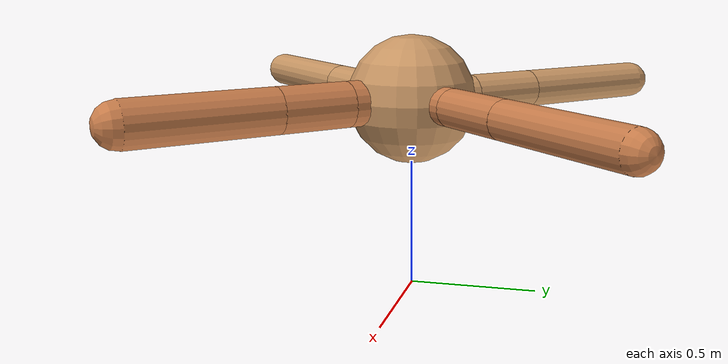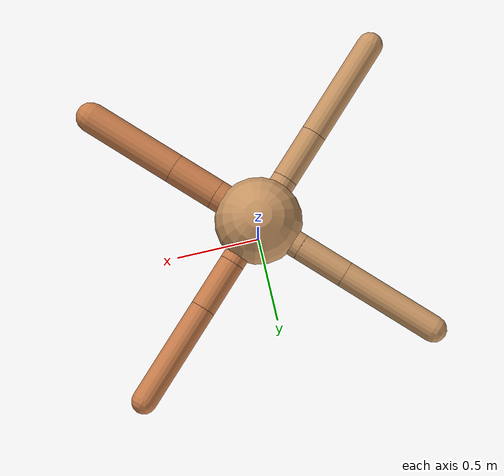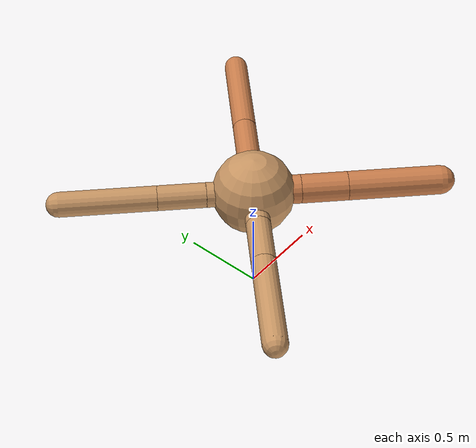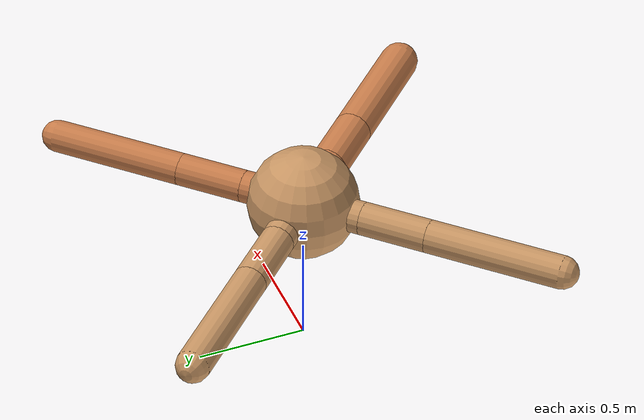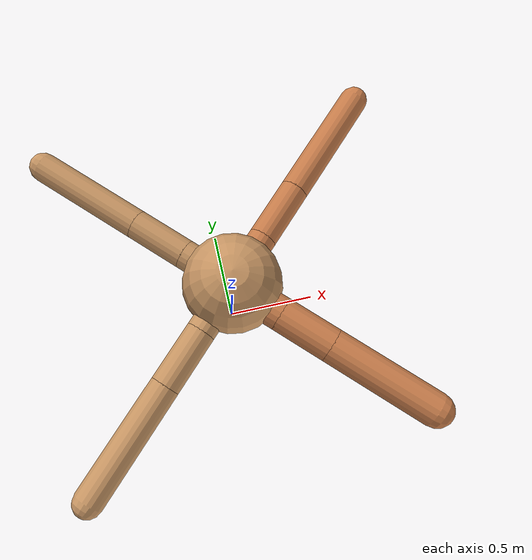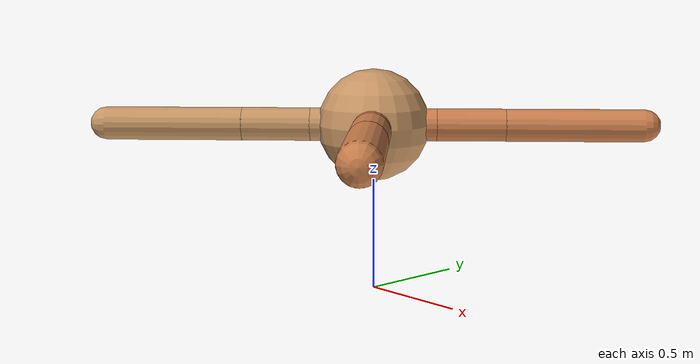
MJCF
<?xml version="1.0" ?>
<mujoco model="ant">

	<compiler angle="degree" coordinate="local" inertiafromgeom="true"/>

	<option integrator="RK4" timestep="0.01"/>

	<custom>

		<numeric data="0.0 0.0 0.55 1.0 0.0 0.0 0.0 0.0 1.0 0.0 -1.0 0.0 -1.0 0.0 1.0" name="init_qpos"/>

	</custom>

	<default>

		<joint armature="1" damping="1" limited="true"/>

		<geom conaffinity="0" condim="3" density="5.0" friction="1.5 0.1 0.1" margin="0.01" rgba="0.8 0.6 0.4 1"/>

	</default>

	<worldbody>

		<body name="torso" pos="0 0 0.75">

			<geom name="torso_geom" pos="0 0 0" size="0.2501740659456609" type="sphere"/>

			<!--joint armature="0" damping="0" limited="false" margin="0.01" name="root" pos="0 0 0" type="free"/-->

			<body name="front_left_leg" pos="0 0 0">

				<geom fromto="0 0 0 0.2 0.2 0" name="aux_1_geom" size="0.0723611362179086" type="capsule" rgba=".8 .5 .3 1"/>

				<body name="aux_1" pos="0.2 0.2 0">

					<joint axis="0 0 1" name="hip_1" pos="0.0 0.0 0.0" range="-40 40" type="hinge"/>

					<geom fromto="0 0 0 0.21662962776228542 0.21662962776228542 0" name="left_leg_geom" size="0.0723611362179086" type="capsule" rgba=".8 .5 .3 1"/>

					<body pos="0.21662962776228542 0.21662962776228542 0" name="front_left_foot">

						<joint axis="-1 1 0" name="ankle_1" pos="0.0 0.0 0.0" range="30 100" type="hinge"/>

						<geom fromto="0 0 0 0.43325925552457084 0.43325925552457084 0" name="left_ankle_geom" size="0.0723611362179086" type="capsule" rgba=".8 .5 .3 1"/>

					</body>

				</body>

			</body>

			<body name="front_right_leg" pos="0 0 0">

				<geom fromto="0 0 0 -0.2 0.2 0" name="aux_2_geom" size="0.07528712939571611" type="capsule"/>

				<body name="aux_2" pos="-0.2 0.2 0">

					<joint axis="0 0 1" name="hip_2" pos="0.0 0.0 0.0" range="-40 40" type="hinge"/>

					<geom fromto="0 0 0 -0.2064460693093677 0.2064460693093677 0" name="right_leg_geom" size="0.07528712939571611" type="capsule"/>

					<body pos="-0.2064460693093677 0.2064460693093677 0" name="front_right_foot">

						<joint axis="1 1 0" name="ankle_2" pos="0.0 0.0 0.0" range="-100 -30" type="hinge"/>

						<geom fromto="0 0 0 -0.4128921386187354 0.4128921386187354 0" name="right_ankle_geom" size="0.07528712939571611" type="capsule"/>

					</body>

				</body>

			</body>

			<body name="left_back_leg" pos="0 0 0">

				<geom fromto="0 0 0 -0.2 -0.2 0" name="aux_3_geom" size="0.07388218054839675" type="capsule"/>

				<body name="aux_3" pos="-0.2 -0.2 0">

					<joint axis="0 0 1" name="hip_3" pos="0.0 0.0 0.0" range="-40 40" type="hinge"/>

					<geom fromto="0 0 0 -0.21735360111826874 -0.21735360111826874 0" name="back_leg_geom" size="0.07388218054839675" type="capsule"/>

					<body pos="-0.21735360111826874 -0.21735360111826874 0" name="left_back_foot">

						<joint axis="-1 1 0" name="ankle_3" pos="0.0 0.0 0.0" range="-100 -30" type="hinge"/>

						<geom fromto="0 0 0 -0.43470720223653747 -0.43470720223653747 0" name="third_ankle_geom" size="0.07388218054839675" type="capsule"/>

					</body>

				</body>

			</body>

			<body name="right_back_leg" pos="0 0 0">

				<geom fromto="0 0 0 0.2 -0.2 0" name="aux_4_geom" size="0.08700342498634037" type="capsule" rgba=".8 .5 .3 1"/>

				<body name="aux_4" pos="0.2 -0.2 0">

					<joint axis="0 0 1" name="hip_4" pos="0.0 0.0 0.0" range="-40 40" type="hinge"/>

					<geom fromto="0 0 0 0.19896783791783856 -0.19896783791783856 0" name="rightback_leg_geom" size="0.08700342498634037" type="capsule" rgba=".8 .5 .3 1"/>

					<body pos="0.19896783791783856 -0.19896783791783856 0" name="right_back_foot">

						<joint axis="1 1 0" name="ankle_4" pos="0.0 0.0 0.0" range="30 100" type="hinge"/>

						<geom fromto="0 0 0 0.3979356758356771 -0.3979356758356771 0" name="fourth_ankle_geom" size="0.08700342498634037" type="capsule" rgba=".8 .5 .3 1"/>

					</body>

				</body>

			</body>

		</body>

	</worldbody>

	<actuator>

		<motor ctrllimited="true" ctrlrange="-1.0 1.0" joint="hip_4" gear="150"/>

		<motor ctrllimited="true" ctrlrange="-1.0 1.0" joint="ankle_4" gear="150"/>

		<motor ctrllimited="true" ctrlrange="-1.0 1.0" joint="hip_1" gear="150"/>

		<motor ctrllimited="true" ctrlrange="-1.0 1.0" joint="ankle_1" gear="150"/>

		<motor ctrllimited="true" ctrlrange="-1.0 1.0" joint="hip_2" gear="150"/>

		<motor ctrllimited="true" ctrlrange="-1.0 1.0" joint="ankle_2" gear="150"/>

		<motor ctrllimited="true" ctrlrange="-1.0 1.0" joint="hip_3" gear="150"/>

		<motor ctrllimited="true" ctrlrange="-1.0 1.0" joint="ankle_3" gear="150"/>

	</actuator>

</mujoco>
